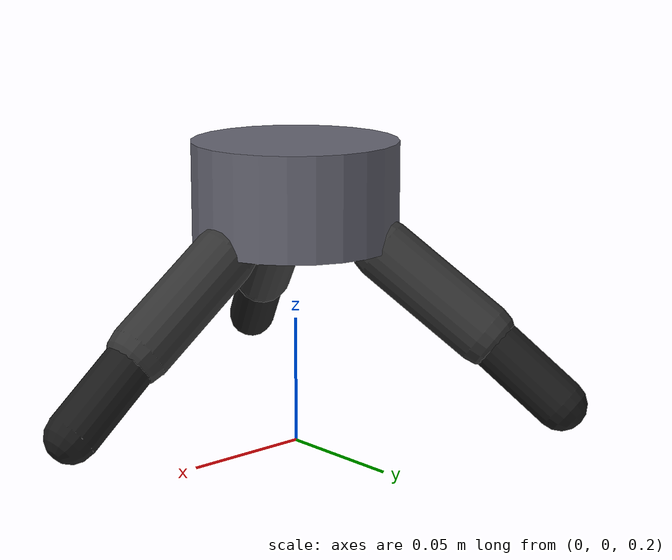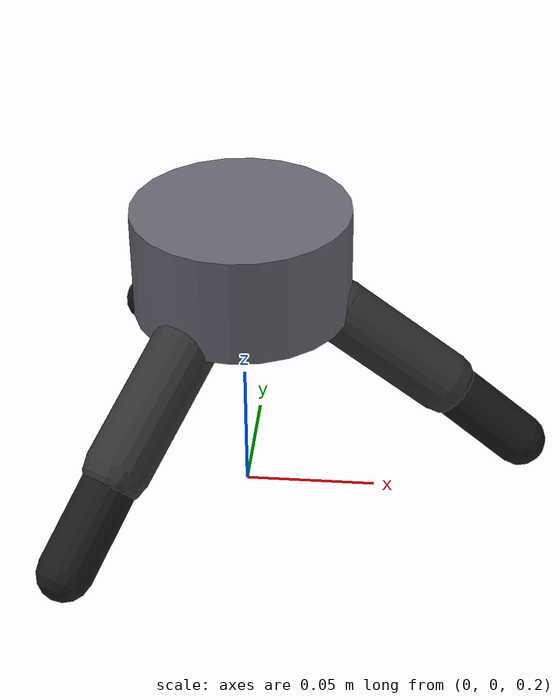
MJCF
<mujoco model="robotiq_3finger_gripper">
  <!--
    Simplified Robotiq-style 3-Finger Gripper
    3 fingers with 2 joints each = 6 DoF for fingers
    + 6 DoF for arm positioning = 12 DoF total
  -->

  <compiler angle="radian" autolimits="true"/>

  <default>
    <joint damping="0.5" armature="0.01"/>
    <geom friction="1.0 0.5 0.5" condim="4" contype="1" conaffinity="1"/>
    <position kp="20" kv="2"/>
  </default>

  <asset>
    <material name="gripper_metal" rgba="0.4 0.4 0.45 1"/>
    <material name="finger_rubber" rgba="0.2 0.2 0.2 1"/>
    <material name="finger_tip" rgba="0.1 0.1 0.1 1"/>
  </asset>

  <worldbody>
    <!-- Gripper base mount (attaches to arm or world) -->
    <body name="gripper_base" pos="0 0 0.3">
      <!-- 6 DoF positioning (like a floating base or arm end-effector) -->
      <joint name="base_x" type="slide" axis="1 0 0" range="-0.3 0.3" damping="5"/>
      <joint name="base_y" type="slide" axis="0 1 0" range="-0.3 0.3" damping="5"/>
      <joint name="base_z" type="slide" axis="0 0 1" range="0.05 0.5" damping="5"/>
      <joint name="base_roll" type="hinge" axis="1 0 0" range="-3.14 3.14" damping="1"/>
      <joint name="base_pitch" type="hinge" axis="0 1 0" range="-1.57 1.57" damping="1"/>
      <joint name="base_yaw" type="hinge" axis="0 0 1" range="-3.14 3.14" damping="1"/>

      <!-- Palm/base of gripper -->
      <geom name="palm" type="cylinder" size="0.04 0.02" material="gripper_metal"/>

      <!-- Finger A (front) -->
      <body name="finger_a_proximal" pos="0.035 0 -0.02" euler="0 0 0">
        <joint name="finger_a_base" type="hinge" axis="0 1 0" range="-0.2 1.4"/>
        <geom name="finger_a_prox_geom" type="capsule" fromto="0 0 0 0.04 0 -0.03" size="0.012" material="finger_rubber"/>

        <body name="finger_a_distal" pos="0.04 0 -0.03">
          <joint name="finger_a_tip" type="hinge" axis="0 1 0" range="-0.4 1.2"/>
          <geom name="finger_a_dist_geom" type="capsule" fromto="0 0 0 0.03 0 -0.025" size="0.01" material="finger_tip"/>
          <site name="finger_a_site" pos="0.03 0 -0.025" size="0.005"/>
        </body>
      </body>

      <!-- Finger B (back-left) -->
      <body name="finger_b_proximal" pos="-0.0175 0.0303 -0.02" euler="0 0 2.094">
        <joint name="finger_b_base" type="hinge" axis="0 1 0" range="-0.2 1.4"/>
        <geom name="finger_b_prox_geom" type="capsule" fromto="0 0 0 0.04 0 -0.03" size="0.012" material="finger_rubber"/>

        <body name="finger_b_distal" pos="0.04 0 -0.03">
          <joint name="finger_b_tip" type="hinge" axis="0 1 0" range="-0.4 1.2"/>
          <geom name="finger_b_dist_geom" type="capsule" fromto="0 0 0 0.03 0 -0.025" size="0.01" material="finger_tip"/>
          <site name="finger_b_site" pos="0.03 0 -0.025" size="0.005"/>
        </body>
      </body>

      <!-- Finger C (back-right) -->
      <body name="finger_c_proximal" pos="-0.0175 -0.0303 -0.02" euler="0 0 -2.094">
        <joint name="finger_c_base" type="hinge" axis="0 1 0" range="-0.2 1.4"/>
        <geom name="finger_c_prox_geom" type="capsule" fromto="0 0 0 0.04 0 -0.03" size="0.012" material="finger_rubber"/>

        <body name="finger_c_distal" pos="0.04 0 -0.03">
          <joint name="finger_c_tip" type="hinge" axis="0 1 0" range="-0.4 1.2"/>
          <geom name="finger_c_dist_geom" type="capsule" fromto="0 0 0 0.03 0 -0.025" size="0.01" material="finger_tip"/>
          <site name="finger_c_site" pos="0.03 0 -0.025" size="0.005"/>
        </body>
      </body>
    </body>
  </worldbody>

  <actuator>
    <!-- Arm/base positioning -->
    <position name="act_base_x" joint="base_x" kp="100"/>
    <position name="act_base_y" joint="base_y" kp="100"/>
    <position name="act_base_z" joint="base_z" kp="100"/>
    <position name="act_base_roll" joint="base_roll" kp="50"/>
    <position name="act_base_pitch" joint="base_pitch" kp="50"/>
    <position name="act_base_yaw" joint="base_yaw" kp="50"/>

    <!-- Finger actuators -->
    <position name="act_finger_a_base" joint="finger_a_base" kp="10"/>
    <position name="act_finger_a_tip" joint="finger_a_tip" kp="5"/>
    <position name="act_finger_b_base" joint="finger_b_base" kp="10"/>
    <position name="act_finger_b_tip" joint="finger_b_tip" kp="5"/>
    <position name="act_finger_c_base" joint="finger_c_base" kp="10"/>
    <position name="act_finger_c_tip" joint="finger_c_tip" kp="5"/>
  </actuator>

  <sensor>
    <touch name="finger_a_touch" site="finger_a_site"/>
    <touch name="finger_b_touch" site="finger_b_site"/>
    <touch name="finger_c_touch" site="finger_c_site"/>
  </sensor>
</mujoco>
